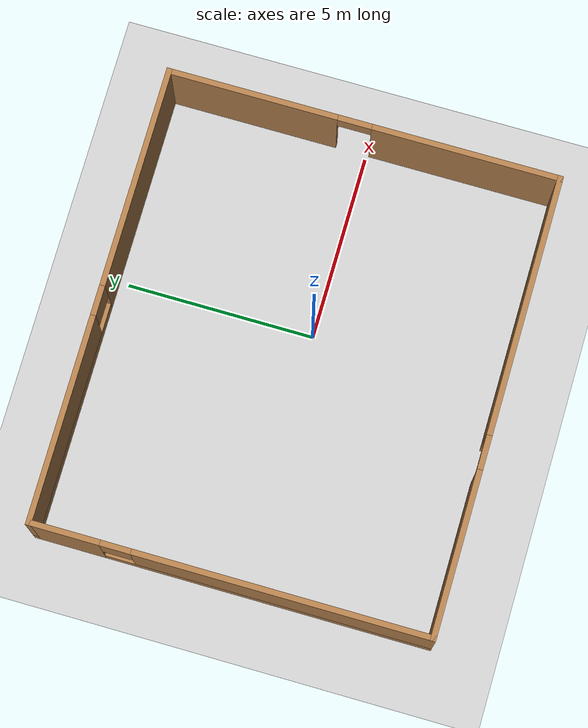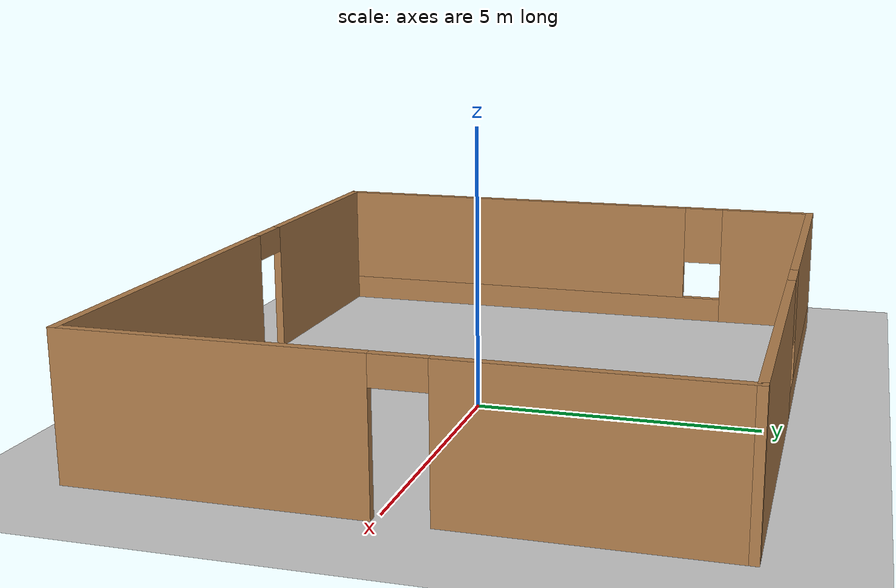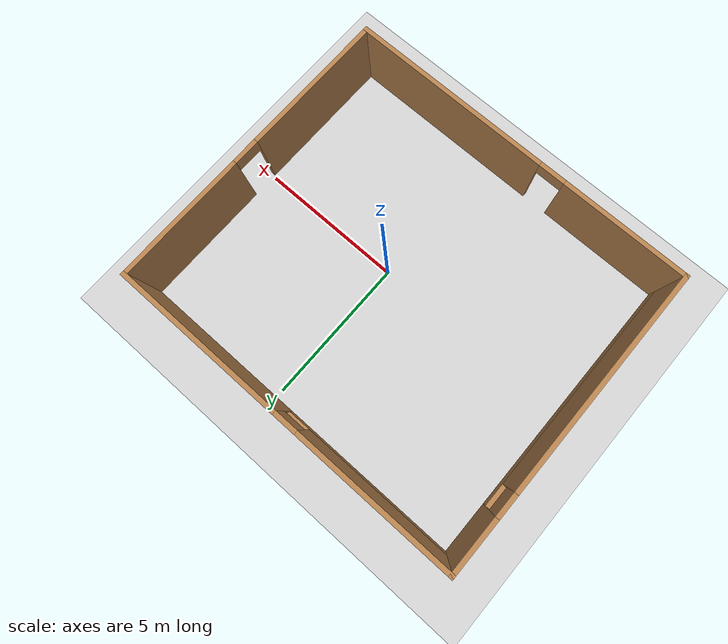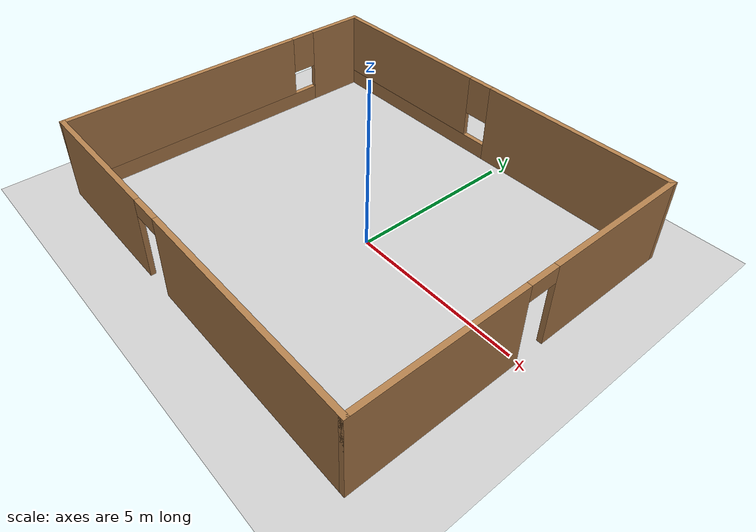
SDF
<sdf version="1.7">
 <world name="default">
  <scene><ambient>0.4 0.4 0.4 1</ambient><background>0.7 0.7 0.7 1</background><shadows>1</shadows></scene>
  <light name="sun" type="directional">
   <pose>0 0 10 0 -0 0</pose>
   <diffuse>0.8 0.8 0.8 1</diffuse>
   <specular>0.2 0.2 0.2 1</specular>
   <attenuation>
    <range>1000</range>
    <constant>0.9</constant>
    <linear>0.01</linear>
    <quadratic>0.001</quadratic>
   </attenuation>
   <direction>-0.5 0.1 -0.9</direction>
   <spot><inner_angle>0</inner_angle><outer_angle>0</outer_angle><falloff>0</falloff></spot>
  </light>
  <model name="ground_plane">
   <static>1</static>
   <link name="link">
    <collision name="collision">
     <geometry><plane><normal>0 0 1</normal><size>100 100</size></plane></geometry>
     <surface><friction><ode><mu>100</mu><mu2>50</mu2></ode></friction></surface>
    </collision>
    <visual name="visual">
     <cast_shadows>0</cast_shadows>
     <geometry><plane><normal>0 0 1</normal><size>100 100</size></plane></geometry>
     <material>
      <script><uri>file://media/materials/scripts/gazebo.material</uri><name>Gazebo/Grey</name></script>
     </material>
    </visual>
   </link>
  </model>
  <physics type="ode">
   <real_time_update_rate>1000</real_time_update_rate>
   <max_step_size>0.001</max_step_size>
   <real_time_factor>1</real_time_factor>
   <ode>
    <solver>
     <type>quick</type>
     <iters>150</iters>
     <precon_iters>0</precon_iters>
     <sor>1.4</sor>
     <use_dynamic_moi_rescaling>1</use_dynamic_moi_rescaling>
    </solver>
    <constraints>
     <cfm>1e-05</cfm>
     <erp>0.2</erp>
     <contact_max_correcting_vel>2000</contact_max_correcting_vel>
     <contact_surface_layer>0.01</contact_surface_layer>
    </constraints>
   </ode>
  </physics>
  <gravity>0 0 -9.8</gravity>
  <magnetic_field>6e-06 2.3e-05 -4.2e-05</magnetic_field>
  <atmosphere type="adiabatic"/>
  <spherical_coordinates>
   <surface_model>EARTH_WGS84</surface_model>
   <latitude_deg>0</latitude_deg>
   <longitude_deg>0</longitude_deg>
   <elevation>0</elevation>
   <heading_deg>0</heading_deg>
  </spherical_coordinates>
  <model name="path">
   <pose>-0.87 0.155 0 0 -0 0</pose>
   <link name="Wall_11">
    <pose>0 -5.175 0 0 -0 0</pose>
    <visual name="Wall_11_Visual_0">
     <pose>-3.91934 0 1.25 0 -0 0</pose>
     <geometry><box><size>4.41132 0.15 2.5</size></box></geometry>
     <material>
      <script><uri>file://media/materials/scripts/gazebo.material</uri><name>Gazebo/Wood</name></script>
      <ambient>1 1 1 1</ambient>
     </material>
     <meta><layer>0</layer></meta>
    </visual>
    <collision name="Wall_11_Collision_0">
     <geometry><box><size>4.41132 0.15 2.5</size></box></geometry>
     <pose>-3.91934 0 1.25 0 -0 0</pose>
    </collision>
    <visual name="Wall_11_Visual_1">
     <pose>2.65566 0 1.25 0 -0 0</pose>
     <geometry><box><size>6.93868 0.15 2.5</size></box></geometry>
     <material>
      <script><uri>file://media/materials/scripts/gazebo.material</uri><name>Gazebo/Wood</name></script>
      <ambient>1 1 1 1</ambient>
     </material>
     <meta><layer>0</layer></meta>
    </visual>
    <collision name="Wall_11_Collision_1">
     <geometry><box><size>6.93868 0.15 2.5</size></box></geometry>
     <pose>2.65566 0 1.25 0 -0 0</pose>
    </collision>
    <visual name="Wall_11_Visual_2">
     <pose>-1.26368 0 2.25 0 -0 0</pose>
     <geometry><box><size>0.9 0.15 0.5</size></box></geometry>
     <material>
      <script><uri>file://media/materials/scripts/gazebo.material</uri><name>Gazebo/Wood</name></script>
      <ambient>1 1 1 1</ambient>
     </material>
     <meta><layer>0</layer></meta>
    </visual>
    <collision name="Wall_11_Collision_2">
     <geometry><box><size>0.9 0.15 0.5</size></box></geometry>
     <pose>-1.26368 0 2.25 0 -0 0</pose>
    </collision>
   </link>
   <link name="Wall_13">
    <pose>6.05 -0 0 0 -0 1.5708</pose>
    <visual name="Wall_13_Visual_0">
     <pose>-2.73372 0 1.25 0 -0 0</pose>
     <geometry><box><size>5.03256 0.15 2.5</size></box></geometry>
     <material>
      <script><uri>file://media/materials/scripts/gazebo.material</uri><name>Gazebo/Wood</name></script>
      <ambient>1 1 1 1</ambient>
     </material>
     <meta><layer>0</layer></meta>
    </visual>
    <collision name="Wall_13_Collision_0">
     <geometry><box><size>5.03256 0.15 2.5</size></box></geometry>
     <pose>-2.73372 0 1.25 0 -0 0</pose>
    </collision>
    <visual name="Wall_13_Visual_1">
     <pose>2.96628 0 1.25 0 -0 0</pose>
     <geometry><box><size>4.56745 0.15 2.5</size></box></geometry>
     <material>
      <script><uri>file://media/materials/scripts/gazebo.material</uri><name>Gazebo/Wood</name></script>
      <ambient>1 1 1 1</ambient>
     </material>
     <meta><layer>0</layer></meta>
    </visual>
    <collision name="Wall_13_Collision_1">
     <geometry><box><size>4.56745 0.15 2.5</size></box></geometry>
     <pose>2.96628 0 1.25 0 -0 0</pose>
    </collision>
    <visual name="Wall_13_Visual_2">
     <pose>0.232555 0 2.25 0 -0 0</pose>
     <geometry><box><size>0.9 0.15 0.5</size></box></geometry>
     <material>
      <script><uri>file://media/materials/scripts/gazebo.material</uri><name>Gazebo/Wood</name></script>
      <ambient>1 1 1 1</ambient>
     </material>
     <meta><layer>0</layer></meta>
    </visual>
    <collision name="Wall_13_Collision_2">
     <geometry><box><size>0.9 0.15 0.5</size></box></geometry>
     <pose>0.232555 0 2.25 0 -0 0</pose>
    </collision>
   </link>
   <link name="Wall_14">
    <pose>0 5.175 0 0 -0 3.14159</pose>
    <visual name="Wall_14_Visual_0">
     <pose>-3.15658 0 1.25 0 -0 0</pose>
     <geometry><box><size>5.93684 0.15 2.5</size></box></geometry>
     <material>
      <script><uri>file://media/materials/scripts/gazebo.material</uri><name>Gazebo/Wood</name></script>
      <ambient>1 1 1 1</ambient>
     </material>
     <meta><layer>0</layer></meta>
    </visual>
    <collision name="Wall_14_Collision_0">
     <geometry><box><size>5.93684 0.15 2.5</size></box></geometry>
     <pose>-3.15658 0 1.25 0 -0 0</pose>
    </collision>
    <visual name="Wall_14_Visual_1">
     <pose>2.96842 0 0.25 0 -0 0</pose>
     <geometry><box><size>6.31316 0.15 0.5</size></box></geometry>
     <material>
      <script><uri>file://media/materials/scripts/gazebo.material</uri><name>Gazebo/Wood</name></script>
      <ambient>1 1 1 1</ambient>
     </material>
     <meta><layer>0</layer></meta>
    </visual>
    <collision name="Wall_14_Collision_1">
     <geometry><box><size>6.31316 0.15 0.5</size></box></geometry>
     <pose>2.96842 0 0.25 0 -0 0</pose>
    </collision>
    <visual name="Wall_14_Visual_2">
     <pose>3.36842 0 1.5 0 -0 0</pose>
     <geometry><box><size>5.51316 0.15 2</size></box></geometry>
     <material>
      <script><uri>file://media/materials/scripts/gazebo.material</uri><name>Gazebo/Wood</name></script>
      <ambient>1 1 1 1</ambient>
     </material>
     <meta><layer>0</layer></meta>
    </visual>
    <collision name="Wall_14_Collision_2">
     <geometry><box><size>5.51316 0.15 2</size></box></geometry>
     <pose>3.36842 0 1.5 0 -0 0</pose>
    </collision>
    <visual name="Wall_14_Visual_3">
     <pose>0.211839 0 1.9 0 -0 0</pose>
     <geometry><box><size>0.8 0.15 1.2</size></box></geometry>
     <material>
      <script><uri>file://media/materials/scripts/gazebo.material</uri><name>Gazebo/Wood</name></script>
      <ambient>1 1 1 1</ambient>
     </material>
     <meta><layer>0</layer></meta>
    </visual>
    <collision name="Wall_14_Collision_3">
     <geometry><box><size>0.8 0.15 1.2</size></box></geometry>
     <pose>0.211839 0 1.9 0 -0 0</pose>
    </collision>
   </link>
   <link name="Wall_15">
    <pose>-6.05 -0 0 0 -0 -1.5708</pose>
    <visual name="Wall_15_Visual_0">
     <pose>-4.29654 0 1.25 0 -0 0</pose>
     <geometry><box><size>1.90692 0.15 2.5</size></box></geometry>
     <material>
      <script><uri>file://media/materials/scripts/gazebo.material</uri><name>Gazebo/Wood</name></script>
      <ambient>1 1 1 1</ambient>
     </material>
     <meta><layer>0</layer></meta>
    </visual>
    <collision name="Wall_15_Collision_0">
     <geometry><box><size>1.90692 0.15 2.5</size></box></geometry>
     <pose>-4.29654 0 1.25 0 -0 0</pose>
    </collision>
    <visual name="Wall_15_Visual_1">
     <pose>0.95346 0 0.25 0 -0 0</pose>
     <geometry><box><size>8.59308 0.15 0.5</size></box></geometry>
     <material>
      <script><uri>file://media/materials/scripts/gazebo.material</uri><name>Gazebo/Wood</name></script>
      <ambient>1 1 1 1</ambient>
     </material>
     <meta><layer>0</layer></meta>
    </visual>
    <collision name="Wall_15_Collision_1">
     <geometry><box><size>8.59308 0.15 0.5</size></box></geometry>
     <pose>0.95346 0 0.25 0 -0 0</pose>
    </collision>
    <visual name="Wall_15_Visual_2">
     <pose>1.35346 0 1.5 0 -0 0</pose>
     <geometry><box><size>7.79308 0.15 2</size></box></geometry>
     <material>
      <script><uri>file://media/materials/scripts/gazebo.material</uri><name>Gazebo/Wood</name></script>
      <ambient>1 1 1 1</ambient>
     </material>
     <meta><layer>0</layer></meta>
    </visual>
    <collision name="Wall_15_Collision_2">
     <geometry><box><size>7.79308 0.15 2</size></box></geometry>
     <pose>1.35346 0 1.5 0 -0 0</pose>
    </collision>
    <visual name="Wall_15_Visual_3">
     <pose>-2.94308 0 1.9 0 -0 0</pose>
     <geometry><box><size>0.8 0.15 1.2</size></box></geometry>
     <material>
      <script><uri>file://media/materials/scripts/gazebo.material</uri><name>Gazebo/Wood</name></script>
      <ambient>1 1 1 1</ambient>
     </material>
     <meta><layer>0</layer></meta>
    </visual>
    <collision name="Wall_15_Collision_3">
     <geometry><box><size>0.8 0.15 1.2</size></box></geometry>
     <pose>-2.94308 0 1.9 0 -0 0</pose>
    </collision>
   </link>
   <static>1</static>
  </model>
 </world>
</sdf>
